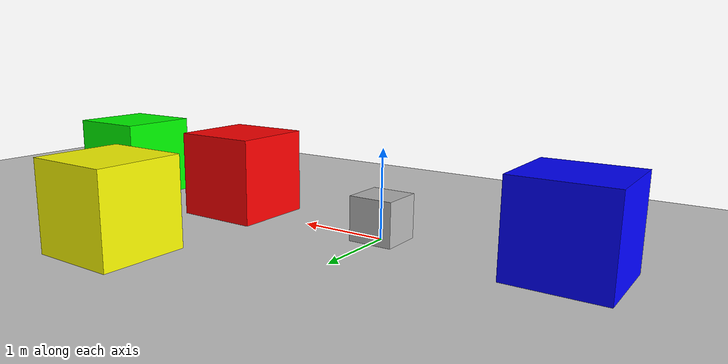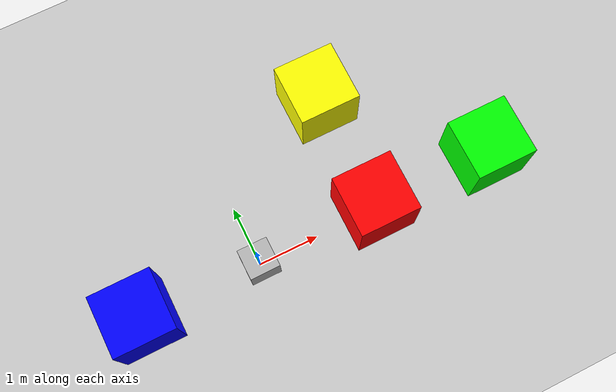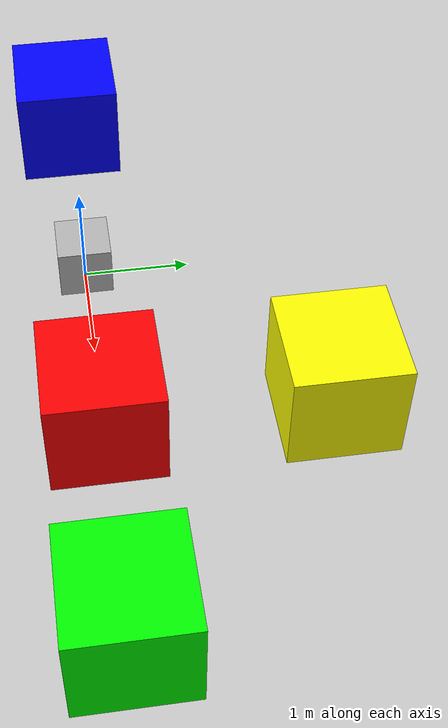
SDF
<?xml version="1.0" ?>
<sdf version="1.5">
  <world name="default">
    <include>
      <uri>model://ground_plane</uri>
    </include>
    <include>
      <uri>model://sun</uri>
    </include>

    <model name="white_box">
      <pose>0 0 0.25 0 0 0</pose>

      <link name="link">
        <collision name="collision">
          <geometry>
            <box>
              <size>0.5 0.5 0.5</size>
            </box>
          </geometry>
          <surface>
            <contact>
              <ode>
                <max_vel>0.00</max_vel>
                <min_depth>0.01</min_depth>
              </ode>
            </contact>
          </surface>
        </collision>
        <visual name="visual">
          <geometry>
            <box>
              <size>0.5 0.5 0.5</size>
            </box>
          </geometry>
        </visual>

        <sensor name="white_box_sensor" type="contact">
          <contact>
            <collision>collision</collision>
          </contact>
        </sensor>

      </link>

      <plugin name="touch_box" filename="libTouchPlugin.so">
        <sensor>white_box_sensor</sensor>
        <target>green_box</target>
        <time>3</time>
        <namespace>white_touches_only_green</namespace>
        <enabled>true</enabled>
      </plugin>

    </model>

    <model name="red_yellow_box">
      <pose>2 0 0.5 0 0 0</pose>

      <link name="red">
        <collision name="collision">
          <geometry>
            <box>
              <size>1 1 1</size>
            </box>
          </geometry>
          <surface>
            <contact>
              <ode>
                <max_vel>0.00</max_vel>
                <min_depth>0.01</min_depth>
              </ode>
            </contact>
          </surface>
        </collision>
        <visual name="visual">
          <geometry>
            <box>
              <size>1 1 1</size>
            </box>
          </geometry>
          <material>
            <ambient>1 0 0 1</ambient>
            <emissive>1 0 0 1</emissive>
          </material>
        </visual>

        <sensor name="red_box_sensor" type="contact">
          <contact>
            <collision>collision</collision>
          </contact>
        </sensor>

      </link>

      <link name="yellow">
        <pose>0 2 0 0 0 0</pose>
        <collision name="collision">
          <geometry>
            <box>
              <size>1 1 1</size>
            </box>
          </geometry>
          <surface>
            <contact>
              <ode>
                <max_vel>0.00</max_vel>
                <min_depth>0.01</min_depth>
              </ode>
            </contact>
          </surface>
        </collision>
        <visual name="visual">
          <geometry>
            <box>
              <size>1 1 1</size>
            </box>
          </geometry>
          <material>
            <ambient>1 1 0 1</ambient>
            <emissive>1 1 0 1</emissive>
          </material>
        </visual>

        <sensor name="yellow_box_sensor" type="contact">
          <contact>
            <collision>collision</collision>
          </contact>
        </sensor>

      </link>

      <plugin name="touch_box" filename="libTouchPlugin.so">
        <sensor>red_box_sensor</sensor>
        <sensor>yellow_box_sensor</sensor>
        <target>green_box</target>
        <time>5</time>
        <namespace>red_and_yellow_touch_only_green</namespace>
        <enabled>true</enabled>
      </plugin>

    </model>

    <model name="blue_box">
      <pose>-2 0 0.5 0 0 0</pose>

      <link name="link">
        <collision name="collision">
          <geometry>
            <box>
              <size>1 1 1</size>
            </box>
          </geometry>
          <surface>
            <contact>
              <ode>
                <max_vel>0.00</max_vel>
                <min_depth>0.01</min_depth>
              </ode>
            </contact>
          </surface>
        </collision>
        <visual name="visual">
          <geometry>
            <box>
              <size>1 1 1</size>
            </box>
          </geometry>
          <material>
            <ambient>0 0 1 1</ambient>
            <emissive>0 0 1 1</emissive>
          </material>
        </visual>

        <sensor name="blue_box_sensor" type="contact">
          <contact>
            <collision>collision</collision>
          </contact>
        </sensor>

      </link>

      <plugin name="touch_box" filename="libTouchPlugin.so">
        <sensor>blue_box_sensor</sensor>
        <target>green_box</target>
        <time>2</time>
        <namespace>blue_touches_only_green</namespace>
      </plugin>

    </model>

    <model name="green_box">
      <pose>4 0 0.5 0 0 0</pose>

      <link name="link">
        <collision name="collision">
          <geometry>
            <box>
              <size>1 1 1</size>
            </box>
          </geometry>
          <surface>
            <contact>
              <ode>
                <max_vel>0.00</max_vel>
                <min_depth>0.01</min_depth>
              </ode>
            </contact>
          </surface>
        </collision>
        <visual name="visual">
          <geometry>
            <box>
              <size>1 1 1</size>
            </box>
          </geometry>
          <material>
            <ambient>0 1 0 1</ambient>
            <emissive>0 1 0 1</emissive>
          </material>
        </visual>

      </link>

    </model>

  </world>
</sdf>
